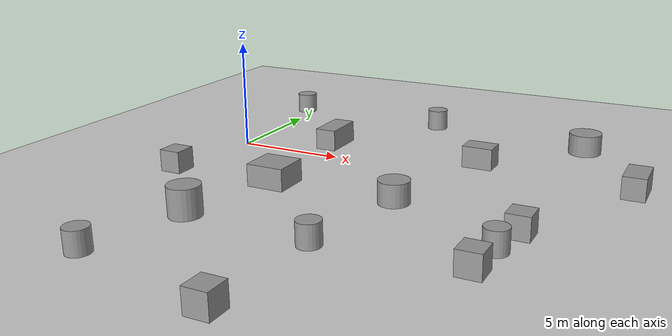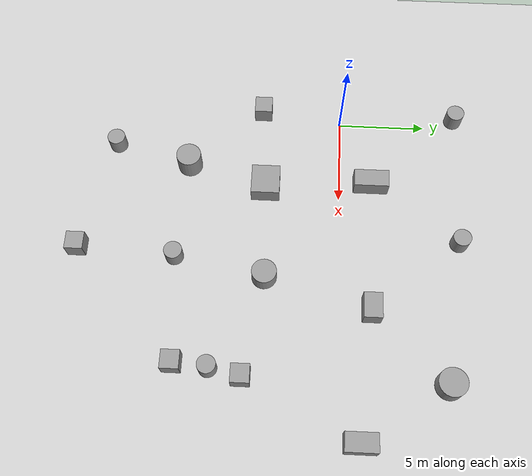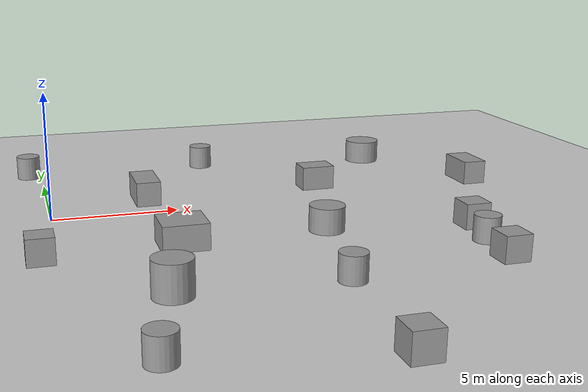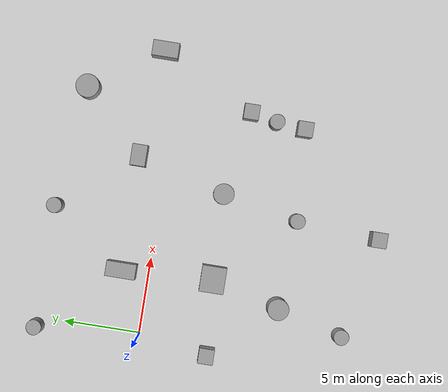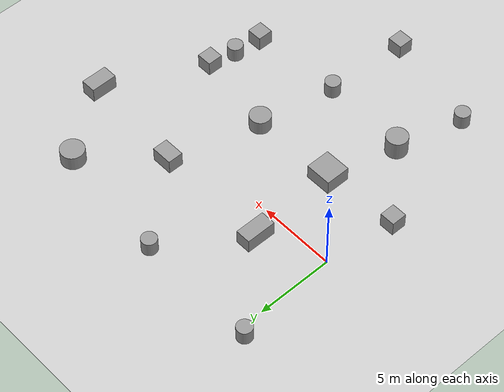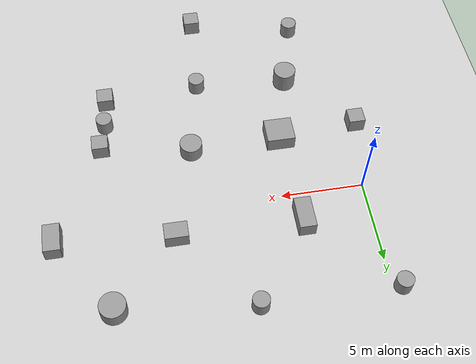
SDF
<sdf version="1.7">
 <world name="default">
  <model name="ground_plane">
   <static>1</static>
   <link name="link">
    <collision name="collision">
     <geometry><plane><normal>0 0 1</normal><size>100 100</size></plane></geometry>
     <surface><friction><ode><mu>100</mu><mu2>50</mu2></ode></friction></surface>
    </collision>
    <visual name="visual">
     <cast_shadows>0</cast_shadows>
     <geometry><plane><normal>0 0 1</normal><size>100 100</size></plane></geometry>
     <material>
      <script><uri>file://media/materials/scripts/gazebo.material</uri><name>Gazebo/Grey</name></script>
     </material>
    </visual>
   </link>
  </model>
  <model name="test">
   <link name="link_0">
    <inertial>
     <mass>2.35844</mass>
     <inertia><ixx>0.54418</ixx><ixy>0</ixy><ixz>0</ixz><iyy>0.54418</iyy><iyz>0</iyz><izz>0.695287</izz></inertia>
    </inertial>
    <pose>6.8224 9.17542 0 0 -0 0</pose>
    <visual name="visual">
     <geometry><cylinder><radius>0.767864</radius><length>1</length></cylinder></geometry>
     <material>
      <lighting>1</lighting>
      <script><uri>file://media/materials/scripts/gazebo.material</uri><name>Gazebo/Grey</name></script>
      <shader type="pixel"/>
     </material>
    </visual>
    <collision name="collision">
     <geometry><cylinder><radius>0.767864</radius><length>1</length></cylinder></geometry>
     <surface>
      <friction>
       <ode><mu>1</mu><mu2>1</mu2><fdir1>0 0 0</fdir1><slip1>0</slip1><slip2>0</slip2></ode>
       <torsional>
        <coefficient>1</coefficient>
        <patch_radius>0</patch_radius>
        <surface_radius>0</surface_radius>
        <use_patch_radius>1</use_patch_radius>
        <ode><slip>0</slip></ode>
       </torsional>
      </friction>
      <bounce><restitution_coefficient>0</restitution_coefficient><threshold>1e+06</threshold></bounce>
      <contact>
       <collide_without_contact>0</collide_without_contact>
       <collide_without_contact_bitmask>1</collide_without_contact_bitmask>
       <collide_bitmask>1</collide_bitmask>
       <ode>
        <soft_cfm>0</soft_cfm>
        <soft_erp>0.2</soft_erp>
        <kp>1e+13</kp>
        <kd>1</kd>
        <max_vel>0.01</max_vel>
        <min_depth>0</min_depth>
       </ode>
       <bullet>
        <split_impulse>1</split_impulse>
        <split_impulse_penetration_threshold>-0.01</split_impulse_penetration_threshold>
        <soft_cfm>0</soft_cfm>
        <soft_erp>0.2</soft_erp>
        <kp>1e+13</kp>
        <kd>1</kd>
       </bullet>
      </contact>
     </surface>
    </collision>
   </link>
   <link name="link_1">
    <inertial>
     <mass>1.39777</mass>
     <inertia>
      <ixx>0.232962</ixx>
      <ixy>0</ixy>
      <ixz>0</ixz>
      <iyy>0.344058</iyy>
      <iyz>0</iyz>
      <izz>0.344058</izz>
     </inertia>
    </inertial>
    <pose>2.9123 5.19786 0 0 -0 0</pose>
    <visual name="visual">
     <geometry><box><size>1.39777 1 1</size></box></geometry>
     <material>
      <lighting>1</lighting>
      <script><uri>file://media/materials/scripts/gazebo.material</uri><name>Gazebo/Grey</name></script>
      <shader type="pixel"/>
     </material>
    </visual>
    <collision name="collision">
     <geometry><box><size>1.39777 1 1</size></box></geometry>
     <surface>
      <friction>
       <ode><mu>1</mu><mu2>1</mu2><fdir1>0 0 0</fdir1><slip1>0</slip1><slip2>0</slip2></ode>
       <torsional>
        <coefficient>1</coefficient>
        <patch_radius>0</patch_radius>
        <surface_radius>0</surface_radius>
        <use_patch_radius>1</use_patch_radius>
        <ode><slip>0</slip></ode>
       </torsional>
      </friction>
      <bounce><restitution_coefficient>0</restitution_coefficient><threshold>1e+06</threshold></bounce>
      <contact>
       <collide_without_contact>0</collide_without_contact>
       <collide_without_contact_bitmask>1</collide_without_contact_bitmask>
       <collide_bitmask>1</collide_bitmask>
       <ode>
        <soft_cfm>0</soft_cfm>
        <soft_erp>0.2</soft_erp>
        <kp>1e+13</kp>
        <kd>1</kd>
        <max_vel>0.01</max_vel>
        <min_depth>0</min_depth>
       </ode>
       <bullet>
        <split_impulse>1</split_impulse>
        <split_impulse_penetration_threshold>-0.01</split_impulse_penetration_threshold>
        <soft_cfm>0</soft_cfm>
        <soft_erp>0.2</soft_erp>
        <kp>1e+13</kp>
        <kd>1</kd>
       </bullet>
      </contact>
     </surface>
    </collision>
   </link>
   <link name="link_10">
    <inertial>
     <mass>1</mass>
     <inertia>
      <ixx>0.166667</ixx>
      <ixy>0</ixy>
      <ixz>0</ixz>
      <iyy>0.166667</iyy>
      <iyz>0</iyz>
      <izz>0.166667</izz>
     </inertia>
    </inertial>
    <pose>-9.28458 -1.16229 0 0 -0 0</pose>
    <visual name="visual">
     <geometry><box><size>1 1 1</size></box></geometry>
     <material>
      <lighting>1</lighting>
      <script><uri>file://media/materials/scripts/gazebo.material</uri><name>Gazebo/Grey</name></script>
      <shader type="pixel"/>
     </material>
    </visual>
    <collision name="collision">
     <geometry><box><size>1 1 1</size></box></geometry>
     <surface>
      <friction>
       <ode><mu>1</mu><mu2>1</mu2><fdir1>0 0 0</fdir1><slip1>0</slip1><slip2>0</slip2></ode>
       <torsional>
        <coefficient>1</coefficient>
        <patch_radius>0</patch_radius>
        <surface_radius>0</surface_radius>
        <use_patch_radius>1</use_patch_radius>
        <ode><slip>0</slip></ode>
       </torsional>
      </friction>
      <bounce><restitution_coefficient>0</restitution_coefficient><threshold>1e+06</threshold></bounce>
      <contact>
       <collide_without_contact>0</collide_without_contact>
       <collide_without_contact_bitmask>1</collide_without_contact_bitmask>
       <collide_bitmask>1</collide_bitmask>
       <ode>
        <soft_cfm>0</soft_cfm>
        <soft_erp>0.2</soft_erp>
        <kp>1e+13</kp>
        <kd>1</kd>
        <max_vel>0.01</max_vel>
        <min_depth>0</min_depth>
       </ode>
       <bullet>
        <split_impulse>1</split_impulse>
        <split_impulse_penetration_threshold>-0.01</split_impulse_penetration_threshold>
        <soft_cfm>0</soft_cfm>
        <soft_erp>0.2</soft_erp>
        <kp>1e+13</kp>
        <kd>1</kd>
       </bullet>
      </contact>
     </surface>
    </collision>
   </link>
   <link name="link_11">
    <inertial>
     <mass>1</mass>
     <inertia><ixx>0.145833</ixx><ixy>0</ixy><ixz>0</ixz><iyy>0.145833</iyy><iyz>0</iyz><izz>0.125</izz></inertia>
    </inertial>
    <pose>-6.68815 -9.61856 0 0 -0 0</pose>
    <visual name="visual">
     <geometry><cylinder><radius>0.5</radius><length>1</length></cylinder></geometry>
     <material>
      <lighting>1</lighting>
      <script><uri>file://media/materials/scripts/gazebo.material</uri><name>Gazebo/Grey</name></script>
      <shader type="pixel"/>
     </material>
    </visual>
    <collision name="collision">
     <geometry><cylinder><radius>0.5</radius><length>1</length></cylinder></geometry>
     <surface>
      <friction>
       <ode><mu>1</mu><mu2>1</mu2><fdir1>0 0 0</fdir1><slip1>0</slip1><slip2>0</slip2></ode>
       <torsional>
        <coefficient>1</coefficient>
        <patch_radius>0</patch_radius>
        <surface_radius>0</surface_radius>
        <use_patch_radius>1</use_patch_radius>
        <ode><slip>0</slip></ode>
       </torsional>
      </friction>
      <bounce><restitution_coefficient>0</restitution_coefficient><threshold>1e+06</threshold></bounce>
      <contact>
       <collide_without_contact>0</collide_without_contact>
       <collide_without_contact_bitmask>1</collide_without_contact_bitmask>
       <collide_bitmask>1</collide_bitmask>
       <ode>
        <soft_cfm>0</soft_cfm>
        <soft_erp>0.2</soft_erp>
        <kp>1e+13</kp>
        <kd>1</kd>
        <max_vel>0.01</max_vel>
        <min_depth>0</min_depth>
       </ode>
       <bullet>
        <split_impulse>1</split_impulse>
        <split_impulse_penetration_threshold>-0.01</split_impulse_penetration_threshold>
        <soft_cfm>0</soft_cfm>
        <soft_erp>0.2</soft_erp>
        <kp>1e+13</kp>
        <kd>1</kd>
       </bullet>
      </contact>
     </surface>
    </collision>
   </link>
   <link name="link_12">
    <inertial>
     <mass>1</mass>
     <inertia>
      <ixx>0.166667</ixx>
      <ixy>0</ixy>
      <ixz>0</ixz>
      <iyy>0.166667</iyy>
      <iyz>0</iyz>
      <izz>0.166667</izz>
     </inertia>
    </inertial>
    <pose>6.8354 -1.59286 0 0 -0 0</pose>
    <visual name="visual">
     <geometry><box><size>1 1 1</size></box></geometry>
     <material>
      <lighting>1</lighting>
      <script><uri>file://media/materials/scripts/gazebo.material</uri><name>Gazebo/Grey</name></script>
      <shader type="pixel"/>
     </material>
    </visual>
    <collision name="collision">
     <geometry><box><size>1 1 1</size></box></geometry>
     <surface>
      <friction>
       <ode><mu>1</mu><mu2>1</mu2><fdir1>0 0 0</fdir1><slip1>0</slip1><slip2>0</slip2></ode>
       <torsional>
        <coefficient>1</coefficient>
        <patch_radius>0</patch_radius>
        <surface_radius>0</surface_radius>
        <use_patch_radius>1</use_patch_radius>
        <ode><slip>0</slip></ode>
       </torsional>
      </friction>
      <bounce><restitution_coefficient>0</restitution_coefficient><threshold>1e+06</threshold></bounce>
      <contact>
       <collide_without_contact>0</collide_without_contact>
       <collide_without_contact_bitmask>1</collide_without_contact_bitmask>
       <collide_bitmask>1</collide_bitmask>
       <ode>
        <soft_cfm>0</soft_cfm>
        <soft_erp>0.2</soft_erp>
        <kp>1e+13</kp>
        <kd>1</kd>
        <max_vel>0.01</max_vel>
        <min_depth>0</min_depth>
       </ode>
       <bullet>
        <split_impulse>1</split_impulse>
        <split_impulse_penetration_threshold>-0.01</split_impulse_penetration_threshold>
        <soft_cfm>0</soft_cfm>
        <soft_erp>0.2</soft_erp>
        <kp>1e+13</kp>
        <kd>1</kd>
       </bullet>
      </contact>
     </surface>
    </collision>
   </link>
   <link name="link_13">
    <inertial>
     <mass>1</mass>
     <inertia><ixx>0.145833</ixx><ixy>0</ixy><ixz>0</ixz><iyy>0.145833</iyy><iyz>0</iyz><izz>0.125</izz></inertia>
    </inertial>
    <pose>0.279985 -5.64687 0 0 -0 0</pose>
    <visual name="visual">
     <geometry><cylinder><radius>0.5</radius><length>1</length></cylinder></geometry>
     <material>
      <lighting>1</lighting>
      <script><uri>file://media/materials/scripts/gazebo.material</uri><name>Gazebo/Grey</name></script>
      <shader type="pixel"/>
     </material>
    </visual>
    <collision name="collision">
     <geometry><cylinder><radius>0.5</radius><length>1</length></cylinder></geometry>
     <surface>
      <friction>
       <ode><mu>1</mu><mu2>1</mu2><fdir1>0 0 0</fdir1><slip1>0</slip1><slip2>0</slip2></ode>
       <torsional>
        <coefficient>1</coefficient>
        <patch_radius>0</patch_radius>
        <surface_radius>0</surface_radius>
        <use_patch_radius>1</use_patch_radius>
        <ode><slip>0</slip></ode>
       </torsional>
      </friction>
      <bounce><restitution_coefficient>0</restitution_coefficient><threshold>1e+06</threshold></bounce>
      <contact>
       <collide_without_contact>0</collide_without_contact>
       <collide_without_contact_bitmask>1</collide_without_contact_bitmask>
       <collide_bitmask>1</collide_bitmask>
       <ode>
        <soft_cfm>0</soft_cfm>
        <soft_erp>0.2</soft_erp>
        <kp>1e+13</kp>
        <kd>1</kd>
        <max_vel>0.01</max_vel>
        <min_depth>0</min_depth>
       </ode>
       <bullet>
        <split_impulse>1</split_impulse>
        <split_impulse_penetration_threshold>-0.01</split_impulse_penetration_threshold>
        <soft_cfm>0</soft_cfm>
        <soft_erp>0.2</soft_erp>
        <kp>1e+13</kp>
        <kd>1</kd>
       </bullet>
      </contact>
     </surface>
    </collision>
   </link>
   <link name="link_14">
    <inertial>
     <mass>1.71585</mass>
     <inertia>
      <ixx>0.563966</ixx>
      <ixy>0</ixy>
      <ixz>0</ixz>
      <iyy>0.285976</iyy>
      <iyz>0</iyz>
      <izz>0.563966</izz>
     </inertia>
    </inertial>
    <pose>9.96126 4.5598 0 0 -0 0</pose>
    <visual name="visual">
     <geometry><box><size>1 1.71585 1</size></box></geometry>
     <material>
      <lighting>1</lighting>
      <script><uri>file://media/materials/scripts/gazebo.material</uri><name>Gazebo/Grey</name></script>
      <shader type="pixel"/>
     </material>
    </visual>
    <collision name="collision">
     <geometry><box><size>1 1.71585 1</size></box></geometry>
     <surface>
      <friction>
       <ode><mu>1</mu><mu2>1</mu2><fdir1>0 0 0</fdir1><slip1>0</slip1><slip2>0</slip2></ode>
       <torsional>
        <coefficient>1</coefficient>
        <patch_radius>0</patch_radius>
        <surface_radius>0</surface_radius>
        <use_patch_radius>1</use_patch_radius>
        <ode><slip>0</slip></ode>
       </torsional>
      </friction>
      <bounce><restitution_coefficient>0</restitution_coefficient><threshold>1e+06</threshold></bounce>
      <contact>
       <collide_without_contact>0</collide_without_contact>
       <collide_without_contact_bitmask>1</collide_without_contact_bitmask>
       <collide_bitmask>1</collide_bitmask>
       <ode>
        <soft_cfm>0</soft_cfm>
        <soft_erp>0.2</soft_erp>
        <kp>1e+13</kp>
        <kd>1</kd>
        <max_vel>0.01</max_vel>
        <min_depth>0</min_depth>
       </ode>
       <bullet>
        <split_impulse>1</split_impulse>
        <split_impulse_penetration_threshold>-0.01</split_impulse_penetration_threshold>
        <soft_cfm>0</soft_cfm>
        <soft_erp>0.2</soft_erp>
        <kp>1e+13</kp>
        <kd>1</kd>
       </bullet>
      </contact>
     </surface>
    </collision>
   </link>
   <link name="link_15">
    <inertial>
     <mass>1</mass>
     <inertia><ixx>0.145833</ixx><ixy>0</ixy><ixz>0</ixz><iyy>0.145833</iyy><iyz>0</iyz><izz>0.125</izz></inertia>
    </inertial>
    <pose>6.45641 -3.33112 0 0 -0 0</pose>
    <visual name="visual">
     <geometry><cylinder><radius>0.5</radius><length>1</length></cylinder></geometry>
     <material>
      <lighting>1</lighting>
      <script><uri>file://media/materials/scripts/gazebo.material</uri><name>Gazebo/Grey</name></script>
      <shader type="pixel"/>
     </material>
    </visual>
    <collision name="collision">
     <geometry><cylinder><radius>0.5</radius><length>1</length></cylinder></geometry>
     <surface>
      <friction>
       <ode><mu>1</mu><mu2>1</mu2><fdir1>0 0 0</fdir1><slip1>0</slip1><slip2>0</slip2></ode>
       <torsional>
        <coefficient>1</coefficient>
        <patch_radius>0</patch_radius>
        <surface_radius>0</surface_radius>
        <use_patch_radius>1</use_patch_radius>
        <ode><slip>0</slip></ode>
       </torsional>
      </friction>
      <bounce><restitution_coefficient>0</restitution_coefficient><threshold>1e+06</threshold></bounce>
      <contact>
       <collide_without_contact>0</collide_without_contact>
       <collide_without_contact_bitmask>1</collide_without_contact_bitmask>
       <collide_bitmask>1</collide_bitmask>
       <ode>
        <soft_cfm>0</soft_cfm>
        <soft_erp>0.2</soft_erp>
        <kp>1e+13</kp>
        <kd>1</kd>
        <max_vel>0.01</max_vel>
        <min_depth>0</min_depth>
       </ode>
       <bullet>
        <split_impulse>1</split_impulse>
        <split_impulse_penetration_threshold>-0.01</split_impulse_penetration_threshold>
        <soft_cfm>0</soft_cfm>
        <soft_erp>0.2</soft_erp>
        <kp>1e+13</kp>
        <kd>1</kd>
       </bullet>
      </contact>
     </surface>
    </collision>
   </link>
   <link name="link_2">
    <inertial>
     <mass>1</mass>
     <inertia><ixx>0.145833</ixx><ixy>0</ixy><ixz>0</ixz><iyy>0.145833</iyy><iyz>0</iyz><izz>0.125</izz></inertia>
    </inertial>
    <pose>-1.14847 10.0992 0 0 -0 0</pose>
    <visual name="visual">
     <geometry><cylinder><radius>0.5</radius><length>1</length></cylinder></geometry>
     <material>
      <lighting>1</lighting>
      <script><uri>file://media/materials/scripts/gazebo.material</uri><name>Gazebo/Grey</name></script>
      <shader type="pixel"/>
     </material>
    </visual>
    <collision name="collision">
     <geometry><cylinder><radius>0.5</radius><length>1</length></cylinder></geometry>
     <surface>
      <friction>
       <ode><mu>1</mu><mu2>1</mu2><fdir1>0 0 0</fdir1><slip1>0</slip1><slip2>0</slip2></ode>
       <torsional>
        <coefficient>1</coefficient>
        <patch_radius>0</patch_radius>
        <surface_radius>0</surface_radius>
        <use_patch_radius>1</use_patch_radius>
        <ode><slip>0</slip></ode>
       </torsional>
      </friction>
      <bounce><restitution_coefficient>0</restitution_coefficient><threshold>1e+06</threshold></bounce>
      <contact>
       <collide_without_contact>0</collide_without_contact>
       <collide_without_contact_bitmask>1</collide_without_contact_bitmask>
       <collide_bitmask>1</collide_bitmask>
       <ode>
        <soft_cfm>0</soft_cfm>
        <soft_erp>0.2</soft_erp>
        <kp>1e+13</kp>
        <kd>1</kd>
        <max_vel>0.01</max_vel>
        <min_depth>0</min_depth>
       </ode>
       <bullet>
        <split_impulse>1</split_impulse>
        <split_impulse_penetration_threshold>-0.01</split_impulse_penetration_threshold>
        <soft_cfm>0</soft_cfm>
        <soft_erp>0.2</soft_erp>
        <kp>1e+13</kp>
        <kd>1</kd>
       </bullet>
      </contact>
     </surface>
    </collision>
   </link>
   <link name="link_3">
    <inertial>
     <mass>2.75203</mass>
     <inertia>
      <ixx>0.815472</ixx>
      <ixy>0</ixy>
      <ixz>0</ixz>
      <iyy>0.908932</iyy>
      <iyz>0</iyz>
      <izz>1.26573</izz>
     </inertia>
    </inertial>
    <pose>-4.29739 -0.820509 0 0 -0 0</pose>
    <visual name="visual">
     <geometry><box><size>1.72143 1.59869 1</size></box></geometry>
     <material>
      <lighting>1</lighting>
      <script><uri>file://media/materials/scripts/gazebo.material</uri><name>Gazebo/Grey</name></script>
      <shader type="pixel"/>
     </material>
    </visual>
    <collision name="collision">
     <geometry><box><size>1.72143 1.59869 1</size></box></geometry>
     <surface>
      <friction>
       <ode><mu>1</mu><mu2>1</mu2><fdir1>0 0 0</fdir1><slip1>0</slip1><slip2>0</slip2></ode>
       <torsional>
        <coefficient>1</coefficient>
        <patch_radius>0</patch_radius>
        <surface_radius>0</surface_radius>
        <use_patch_radius>1</use_patch_radius>
        <ode><slip>0</slip></ode>
       </torsional>
      </friction>
      <bounce><restitution_coefficient>0</restitution_coefficient><threshold>1e+06</threshold></bounce>
      <contact>
       <collide_without_contact>0</collide_without_contact>
       <collide_without_contact_bitmask>1</collide_without_contact_bitmask>
       <collide_bitmask>1</collide_bitmask>
       <ode>
        <soft_cfm>0</soft_cfm>
        <soft_erp>0.2</soft_erp>
        <kp>1e+13</kp>
        <kd>1</kd>
        <max_vel>0.01</max_vel>
        <min_depth>0</min_depth>
       </ode>
       <bullet>
        <split_impulse>1</split_impulse>
        <split_impulse_penetration_threshold>-0.01</split_impulse_penetration_threshold>
        <soft_cfm>0</soft_cfm>
        <soft_erp>0.2</soft_erp>
        <kp>1e+13</kp>
        <kd>1</kd>
       </bullet>
      </contact>
     </surface>
    </collision>
   </link>
   <link name="link_4">
    <inertial>
     <mass>1</mass>
     <inertia>
      <ixx>0.166667</ixx>
      <ixy>0</ixy>
      <ixz>0</ixz>
      <iyy>0.166667</iyy>
      <iyz>0</iyz>
      <izz>0.166667</izz>
     </inertia>
    </inertial>
    <pose>6.27181 -5.2114 0 0 -0 0</pose>
    <visual name="visual">
     <geometry><box><size>1 1 1</size></box></geometry>
     <material>
      <lighting>1</lighting>
      <script><uri>file://media/materials/scripts/gazebo.material</uri><name>Gazebo/Grey</name></script>
      <shader type="pixel"/>
     </material>
    </visual>
    <collision name="collision">
     <geometry><box><size>1 1 1</size></box></geometry>
     <surface>
      <friction>
       <ode><mu>1</mu><mu2>1</mu2><fdir1>0 0 0</fdir1><slip1>0</slip1><slip2>0</slip2></ode>
       <torsional>
        <coefficient>1</coefficient>
        <patch_radius>0</patch_radius>
        <surface_radius>0</surface_radius>
        <use_patch_radius>1</use_patch_radius>
        <ode><slip>0</slip></ode>
       </torsional>
      </friction>
      <bounce><restitution_coefficient>0</restitution_coefficient><threshold>1e+06</threshold></bounce>
      <contact>
       <collide_without_contact>0</collide_without_contact>
       <collide_without_contact_bitmask>1</collide_without_contact_bitmask>
       <collide_bitmask>1</collide_bitmask>
       <ode>
        <soft_cfm>0</soft_cfm>
        <soft_erp>0.2</soft_erp>
        <kp>1e+13</kp>
        <kd>1</kd>
        <max_vel>0.01</max_vel>
        <min_depth>0</min_depth>
       </ode>
       <bullet>
        <split_impulse>1</split_impulse>
        <split_impulse_penetration_threshold>-0.01</split_impulse_penetration_threshold>
        <soft_cfm>0</soft_cfm>
        <soft_erp>0.2</soft_erp>
        <kp>1e+13</kp>
        <kd>1</kd>
       </bullet>
      </contact>
     </surface>
    </collision>
   </link>
   <link name="link_5">
    <inertial>
     <mass>1.86296</mass>
     <inertia>
      <ixx>0.372161</ixx>
      <ixy>0</ixy>
      <ixz>0</ixz>
      <iyy>0.372161</iyy>
      <iyz>0</iyz>
      <izz>0.433829</izz>
     </inertia>
    </inertial>
    <pose>1.28163 -0.64166 0 0 -0 0</pose>
    <visual name="visual">
     <geometry><cylinder><radius>0.682453</radius><length>1</length></cylinder></geometry>
     <material>
      <lighting>1</lighting>
      <script><uri>file://media/materials/scripts/gazebo.material</uri><name>Gazebo/Grey</name></script>
      <shader type="pixel"/>
     </material>
    </visual>
    <collision name="collision">
     <geometry><cylinder><radius>0.682453</radius><length>1</length></cylinder></geometry>
     <surface>
      <friction>
       <ode><mu>1</mu><mu2>1</mu2><fdir1>0 0 0</fdir1><slip1>0</slip1><slip2>0</slip2></ode>
       <torsional>
        <coefficient>1</coefficient>
        <patch_radius>0</patch_radius>
        <surface_radius>0</surface_radius>
        <use_patch_radius>1</use_patch_radius>
        <ode><slip>0</slip></ode>
       </torsional>
      </friction>
      <bounce><restitution_coefficient>0</restitution_coefficient><threshold>1e+06</threshold></bounce>
      <contact>
       <collide_without_contact>0</collide_without_contact>
       <collide_without_contact_bitmask>1</collide_without_contact_bitmask>
       <collide_bitmask>1</collide_bitmask>
       <ode>
        <soft_cfm>0</soft_cfm>
        <soft_erp>0.2</soft_erp>
        <kp>1e+13</kp>
        <kd>1</kd>
        <max_vel>0.01</max_vel>
        <min_depth>0</min_depth>
       </ode>
       <bullet>
        <split_impulse>1</split_impulse>
        <split_impulse_penetration_threshold>-0.01</split_impulse_penetration_threshold>
        <soft_cfm>0</soft_cfm>
        <soft_erp>0.2</soft_erp>
        <kp>1e+13</kp>
        <kd>1</kd>
       </bullet>
      </contact>
     </surface>
    </collision>
   </link>
   <link name="link_6">
    <inertial>
     <mass>1.96097</mass>
     <inertia>
      <ixx>0.791809</ixx>
      <ixy>0</ixy>
      <ixz>0</ixz>
      <iyy>0.326829</iyy>
      <iyz>0</iyz>
      <izz>0.791809</izz>
     </inertia>
    </inertial>
    <pose>-4.6351 5.17923 0 0 -0 0</pose>
    <visual name="visual">
     <geometry><box><size>1 1.96097 1</size></box></geometry>
     <material>
      <lighting>1</lighting>
      <script><uri>file://media/materials/scripts/gazebo.material</uri><name>Gazebo/Grey</name></script>
      <shader type="pixel"/>
     </material>
    </visual>
    <collision name="collision">
     <geometry><box><size>1 1.96097 1</size></box></geometry>
     <surface>
      <friction>
       <ode><mu>1</mu><mu2>1</mu2><fdir1>0 0 0</fdir1><slip1>0</slip1><slip2>0</slip2></ode>
       <torsional>
        <coefficient>1</coefficient>
        <patch_radius>0</patch_radius>
        <surface_radius>0</surface_radius>
        <use_patch_radius>1</use_patch_radius>
        <ode><slip>0</slip></ode>
       </torsional>
      </friction>
      <bounce><restitution_coefficient>0</restitution_coefficient><threshold>1e+06</threshold></bounce>
      <contact>
       <collide_without_contact>0</collide_without_contact>
       <collide_without_contact_bitmask>1</collide_without_contact_bitmask>
       <collide_bitmask>1</collide_bitmask>
       <ode>
        <soft_cfm>0</soft_cfm>
        <soft_erp>0.2</soft_erp>
        <kp>1e+13</kp>
        <kd>1</kd>
        <max_vel>0.01</max_vel>
        <min_depth>0</min_depth>
       </ode>
       <bullet>
        <split_impulse>1</split_impulse>
        <split_impulse_penetration_threshold>-0.01</split_impulse_penetration_threshold>
        <soft_cfm>0</soft_cfm>
        <soft_erp>0.2</soft_erp>
        <kp>1e+13</kp>
        <kd>1</kd>
       </bullet>
      </contact>
     </surface>
    </collision>
   </link>
   <link name="link_7">
    <inertial>
     <mass>2.94627</mass>
     <inertia>
      <ixx>0.927957</ixx>
      <ixy>0</ixy>
      <ixz>0</ixz>
      <iyy>0.927957</iyy>
      <iyz>0</iyz>
      <izz>0.710438</izz>
     </inertia>
    </inertial>
    <pose>-5.51875 -5.27348 0 0 -0 0</pose>
    <visual name="visual">
     <geometry><cylinder><radius>0.694451</radius><length>1.52733</length></cylinder></geometry>
     <material>
      <lighting>1</lighting>
      <script><uri>file://media/materials/scripts/gazebo.material</uri><name>Gazebo/Grey</name></script>
      <shader type="pixel"/>
     </material>
    </visual>
    <collision name="collision">
     <geometry><cylinder><radius>0.694451</radius><length>1.52733</length></cylinder></geometry>
     <surface>
      <friction>
       <ode><mu>1</mu><mu2>1</mu2><fdir1>0 0 0</fdir1><slip1>0</slip1><slip2>0</slip2></ode>
       <torsional>
        <coefficient>1</coefficient>
        <patch_radius>0</patch_radius>
        <surface_radius>0</surface_radius>
        <use_patch_radius>1</use_patch_radius>
        <ode><slip>0</slip></ode>
       </torsional>
      </friction>
      <bounce><restitution_coefficient>0</restitution_coefficient><threshold>1e+06</threshold></bounce>
      <contact>
       <collide_without_contact>0</collide_without_contact>
       <collide_without_contact_bitmask>1</collide_without_contact_bitmask>
       <collide_bitmask>1</collide_bitmask>
       <ode>
        <soft_cfm>0</soft_cfm>
        <soft_erp>0.2</soft_erp>
        <kp>1e+13</kp>
        <kd>1</kd>
        <max_vel>0.01</max_vel>
        <min_depth>0</min_depth>
       </ode>
       <bullet>
        <split_impulse>1</split_impulse>
        <split_impulse_penetration_threshold>-0.01</split_impulse_penetration_threshold>
        <soft_cfm>0</soft_cfm>
        <soft_erp>0.2</soft_erp>
        <kp>1e+13</kp>
        <kd>1</kd>
       </bullet>
      </contact>
     </surface>
    </collision>
   </link>
   <link name="link_8">
    <inertial>
     <mass>1</mass>
     <inertia>
      <ixx>0.166667</ixx>
      <ixy>0</ixy>
      <ixz>0</ixz>
      <iyy>0.166667</iyy>
      <iyz>0</iyz>
      <izz>0.166667</izz>
     </inertia>
    </inertial>
    <pose>-0.071201 -11.07 0 0 -0 0</pose>
    <visual name="visual">
     <geometry><box><size>1 1 1</size></box></geometry>
     <material>
      <lighting>1</lighting>
      <script><uri>file://media/materials/scripts/gazebo.material</uri><name>Gazebo/Grey</name></script>
      <shader type="pixel"/>
     </material>
    </visual>
    <collision name="collision">
     <geometry><box><size>1 1 1</size></box></geometry>
     <surface>
      <friction>
       <ode><mu>1</mu><mu2>1</mu2><fdir1>0 0 0</fdir1><slip1>0</slip1><slip2>0</slip2></ode>
       <torsional>
        <coefficient>1</coefficient>
        <patch_radius>0</patch_radius>
        <surface_radius>0</surface_radius>
        <use_patch_radius>1</use_patch_radius>
        <ode><slip>0</slip></ode>
       </torsional>
      </friction>
      <bounce><restitution_coefficient>0</restitution_coefficient><threshold>1e+06</threshold></bounce>
      <contact>
       <collide_without_contact>0</collide_without_contact>
       <collide_without_contact_bitmask>1</collide_without_contact_bitmask>
       <collide_bitmask>1</collide_bitmask>
       <ode>
        <soft_cfm>0</soft_cfm>
        <soft_erp>0.2</soft_erp>
        <kp>1e+13</kp>
        <kd>1</kd>
        <max_vel>0.01</max_vel>
        <min_depth>0</min_depth>
       </ode>
       <bullet>
        <split_impulse>1</split_impulse>
        <split_impulse_penetration_threshold>-0.01</split_impulse_penetration_threshold>
        <soft_cfm>0</soft_cfm>
        <soft_erp>0.2</soft_erp>
        <kp>1e+13</kp>
        <kd>1</kd>
       </bullet>
      </contact>
     </surface>
    </collision>
   </link>
   <link name="link_9">
    <inertial>
     <mass>1</mass>
     <inertia><ixx>0.145833</ixx><ixy>0</ixy><ixz>0</ixz><iyy>0.145833</iyy><iyz>0</iyz><izz>0.125</izz></inertia>
    </inertial>
    <pose>-9.1775 10.1571 0 0 -0 0</pose>
    <visual name="visual">
     <geometry><cylinder><radius>0.5</radius><length>1</length></cylinder></geometry>
     <material>
      <lighting>1</lighting>
      <script><uri>file://media/materials/scripts/gazebo.material</uri><name>Gazebo/Grey</name></script>
      <shader type="pixel"/>
     </material>
    </visual>
    <collision name="collision">
     <geometry><cylinder><radius>0.5</radius><length>1</length></cylinder></geometry>
     <surface>
      <friction>
       <ode><mu>1</mu><mu2>1</mu2><fdir1>0 0 0</fdir1><slip1>0</slip1><slip2>0</slip2></ode>
       <torsional>
        <coefficient>1</coefficient>
        <patch_radius>0</patch_radius>
        <surface_radius>0</surface_radius>
        <use_patch_radius>1</use_patch_radius>
        <ode><slip>0</slip></ode>
       </torsional>
      </friction>
      <bounce><restitution_coefficient>0</restitution_coefficient><threshold>1e+06</threshold></bounce>
      <contact>
       <collide_without_contact>0</collide_without_contact>
       <collide_without_contact_bitmask>1</collide_without_contact_bitmask>
       <collide_bitmask>1</collide_bitmask>
       <ode>
        <soft_cfm>0</soft_cfm>
        <soft_erp>0.2</soft_erp>
        <kp>1e+13</kp>
        <kd>1</kd>
        <max_vel>0.01</max_vel>
        <min_depth>0</min_depth>
       </ode>
       <bullet>
        <split_impulse>1</split_impulse>
        <split_impulse_penetration_threshold>-0.01</split_impulse_penetration_threshold>
        <soft_cfm>0</soft_cfm>
        <soft_erp>0.2</soft_erp>
        <kp>1e+13</kp>
        <kd>1</kd>
       </bullet>
      </contact>
     </surface>
    </collision>
   </link>
   <static>1</static>
   <pose>8.6335 -3.39687 0.5 0 -0 0</pose>
  </model>
 </world>
</sdf>
